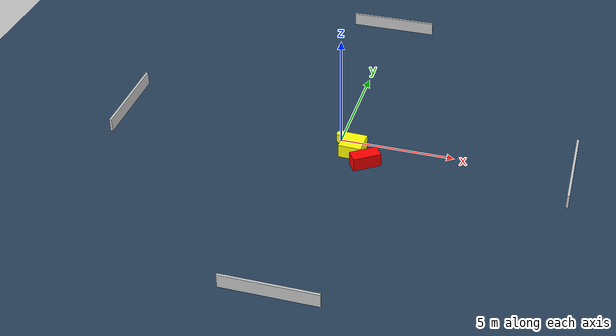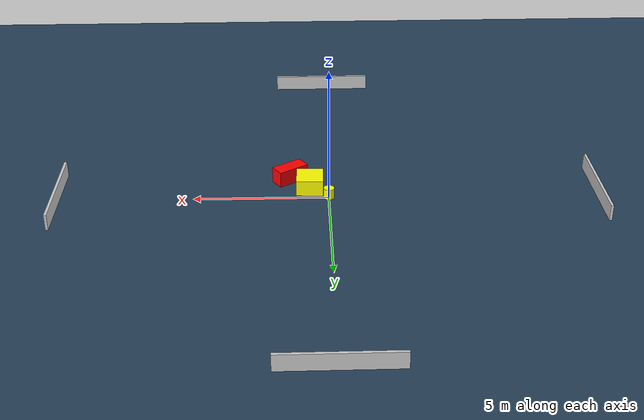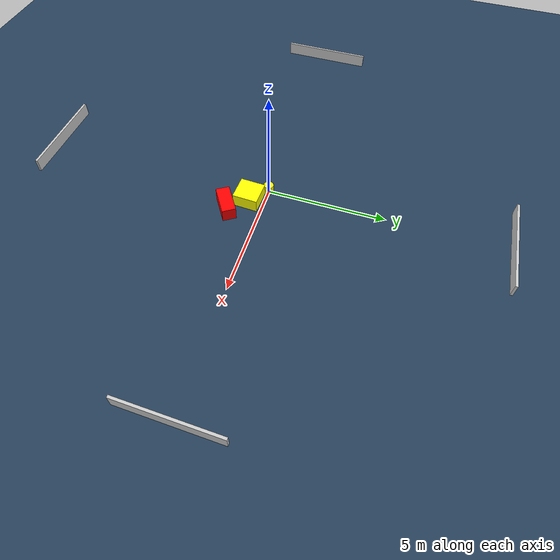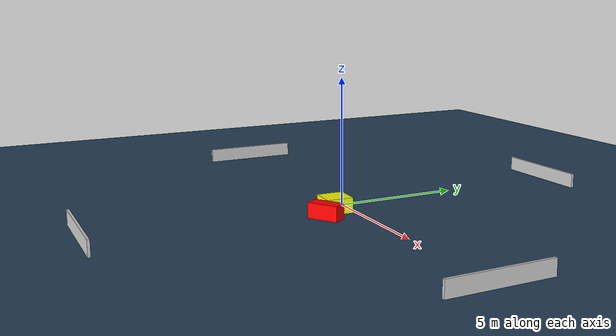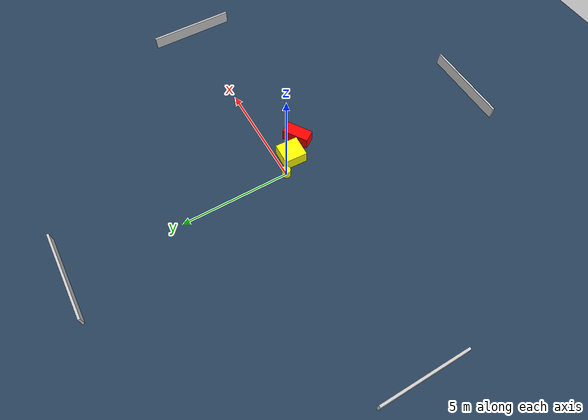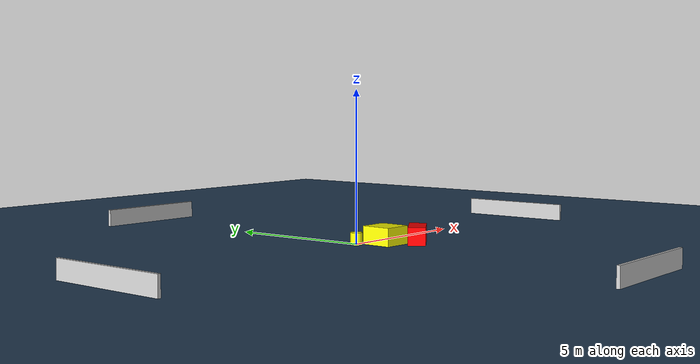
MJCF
<?xml version="1.0" ?>
<mujoco model="generated_environment">
  <option timestep="0.01" integrator="RK4" cone="elliptic"/>
  <default>
    <geom density="1"/>
  </default>
  <asset>
    <texture builtin="gradient" height="3072" name="skybox" rgb1="0.3 0.5 0.7" rgb2="0 0 0" type="skybox" width="512"/>
    <texture builtin="checker" height="300" name="groundplane" rgb1="0.2 0.3 0.4" rgb2="0.1 0.2 0.3" type="2d" width="300"/>
    <material name="groundplane" reflectance="0.2" texrepeat="5 5" texture="groundplane"/>
  </asset>
  <worldbody>
    <light dir="0 0 -1" directional="true" pos="0 0 1.5"/>
    <geom condim="3" friction="0.5 0.005 0.001" material="groundplane" name="floor" pos="0 0 0" size="0 0 0.05" type="plane"/>
    <body name="walls">
      <geom name="wall_1" condim="4" pos="-10.0 0.0 0.3" rgba="0.800000011920929 0.800000011920929 0.800000011920929 1.0" size="0.05 2.0 0.3" type="box"/>
      <geom name="wall_2" condim="4" pos="10.0 0.0 0.3" rgba="0.800000011920929 0.800000011920929 0.800000011920929 1.0" size="0.05 2.0 0.3" type="box"/>
      <geom name="wall_3" condim="4" pos="0.0 -10.0 0.3" rgba="0.800000011920929 0.800000011920929 0.800000011920929 1.0" size="2.0 0.05 0.3" type="box"/>
      <geom name="wall_4" condim="4" pos="0.0 10.0 0.3" rgba="0.800000011920929 0.800000011920929 0.800000011920929 1.0" size="2.0 0.05 0.3" type="box"/>
    </body>
    <body name="robot">
      <joint name="joint_x" type="slide" pos="0 0 0" axis="1 0 0"/>
      <joint name="joint_y" type="slide" pos="0 0 0" axis="0 1 0"/>
      <geom name="robot" type="cylinder" pos="0.0 0.0 0.2" size="0.2 0.2 0.0" mass="5.0" friction="1.0 0.005 0.0001" condim="4" rgba="1.0 1.0 0.0 1.0"/>
    </body>
    <body name="obstacle_1_movable">
      <geom name="obstacle_1_movable" condim="4" pos="0.6948289537325526 -0.6454093132771586 0.3" euler="0 0 267.78952350500435" friction="0.0 0.005 0.001" rgba="1.0 1.0 0.0 1.0" size="0.5223062245302501 0.4980383659880674 0.3" type="box" mass="0.1"/>
      <joint type="free"/>
    </body>
    <body name="obstacle_2_static">
      <geom name="obstacle_2_static" condim="4" pos="1.4308775282655213 -1.3917984351595778 0.3" euler="0 0 303.55861616609604" friction="0.0 0.005 0.001" rgba="1.0 0.0 0.0 1.0" size="0.28575713107904116 0.6169634272946811 0.3" type="box"/>
    </body>
  </worldbody>
  <actuator>
    <motor name="actuator_x" joint="joint_x" gear="1" ctrlrange="-1 1"/>
    <motor name="actuator_y" joint="joint_y" gear="1" ctrlrange="-1 1"/>
  </actuator>
</mujoco>
